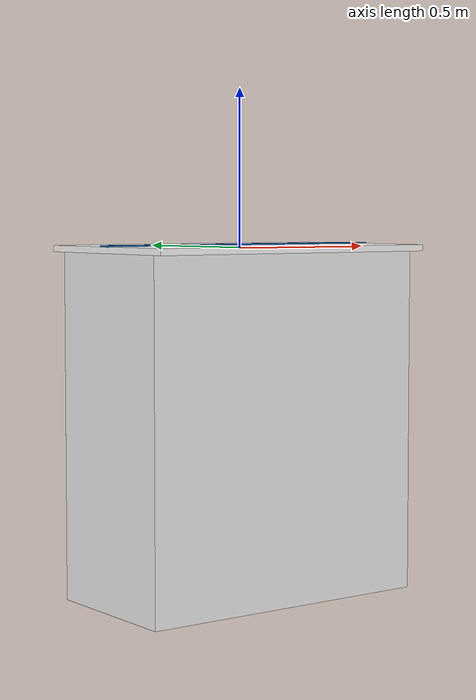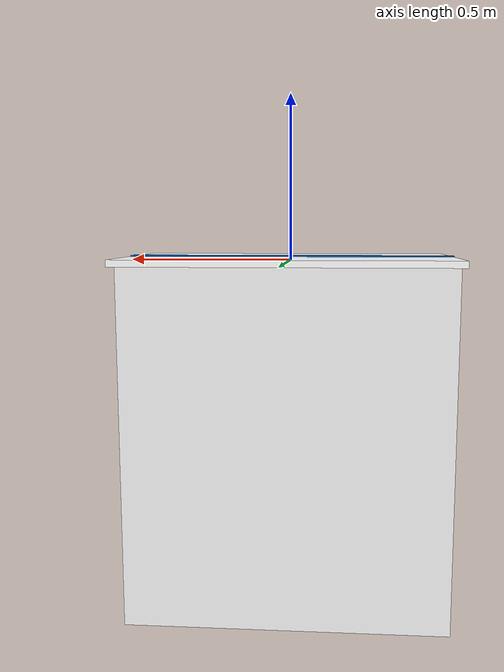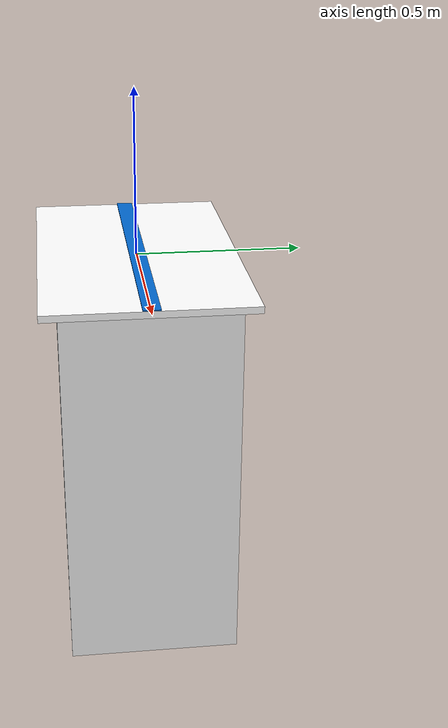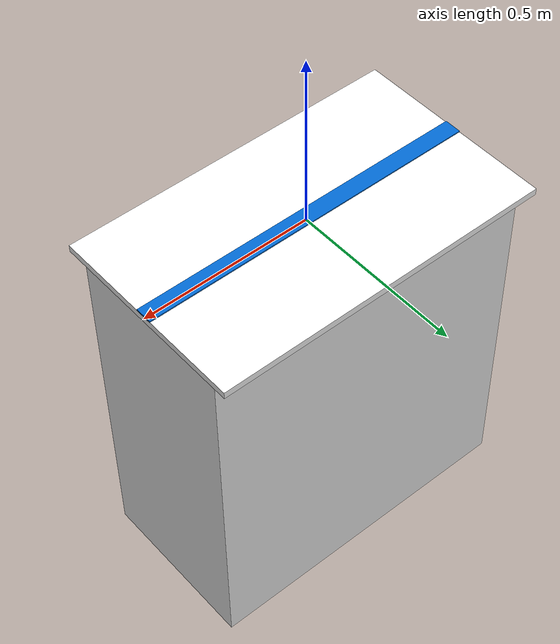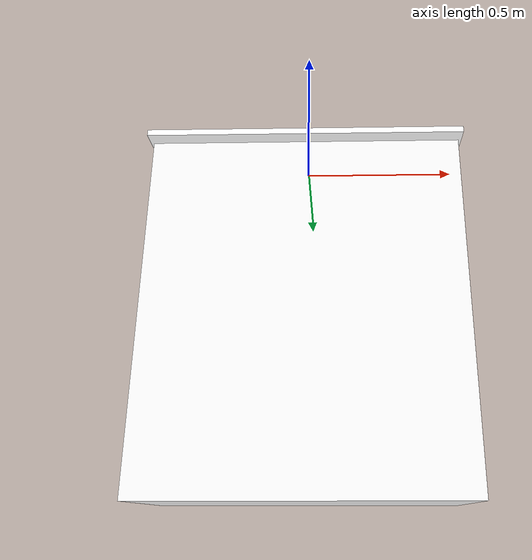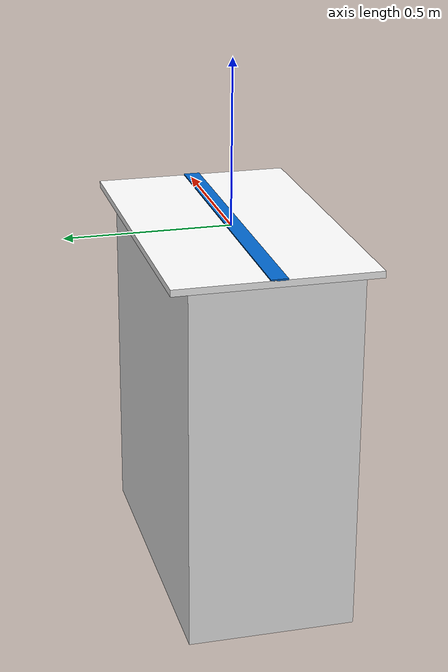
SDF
<?xml version="1.0" ?>
<sdf version="1.8">
  <model name="delivery_track">
    <static>true</static>
    <link name="link">
      <!-- Main Track Countertop (1.0m Unit Length) -->
      <visual name="floor">
        <geometry><box><size>1.0 0.6 0.02</size></box></geometry>
        <material>
          <ambient>1 1 1 1</ambient><diffuse>1 1 1 1</diffuse><specular>0.8 0.8 0.8 1</specular>
        </material>
      </visual>
      <collision name="floor_c">
        <geometry><box><size>1.0 0.6 0.02</size></box></geometry>
      </collision>

      <!-- Pedestal (Adjusted to 1.0m Unit) -->
      <visual name="pedestal">
        <pose>0 0 -0.55 0 0 0</pose>
        <geometry><box><size>0.98 0.5 1.1</size></box></geometry>
        <material><ambient>0.95 0.95 0.95 1</ambient><diffuse>0.95 0.95 0.95 1</diffuse></material>
      </visual>

      <!-- Blue Tech Accent Strip (Center) -->
      <visual name="accent">
        <pose>0 0 0.011 0 0 0</pose>
        <geometry><box><size>1.0 0.05 0.005</size></box></geometry>
        <material><ambient>0 0.4 0.8 1</ambient><diffuse>0 0.4 0.8 1</diffuse><emissive>0 0.2 0.4 1</emissive></material>
      </visual>
    </link>
  </model>
</sdf>
